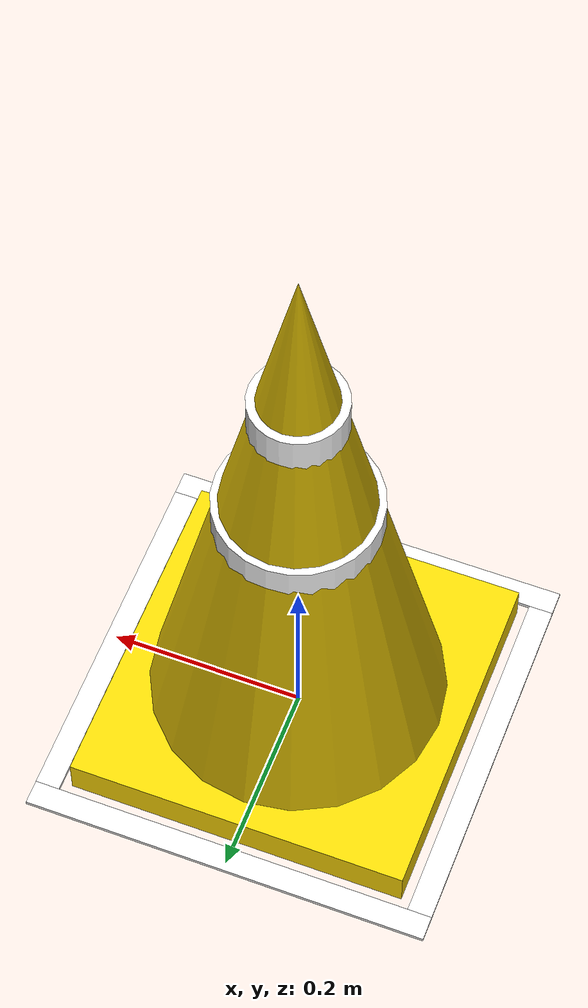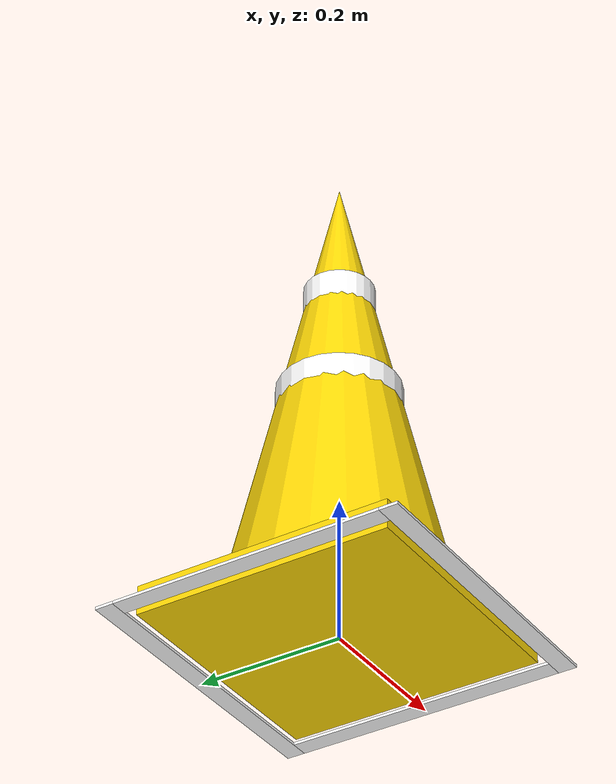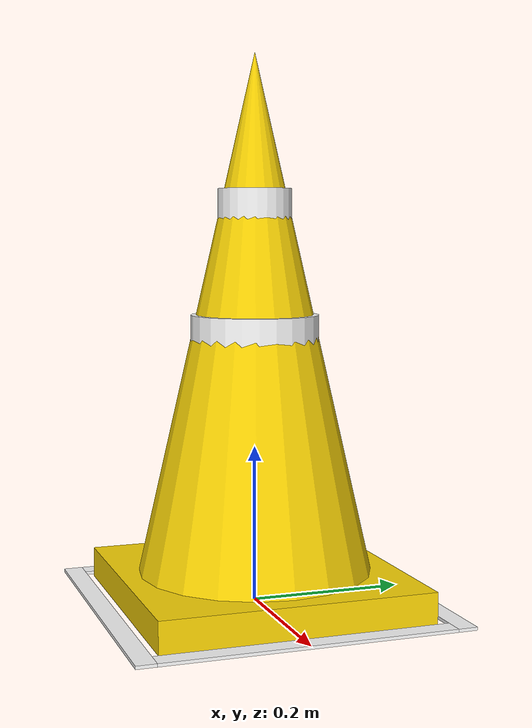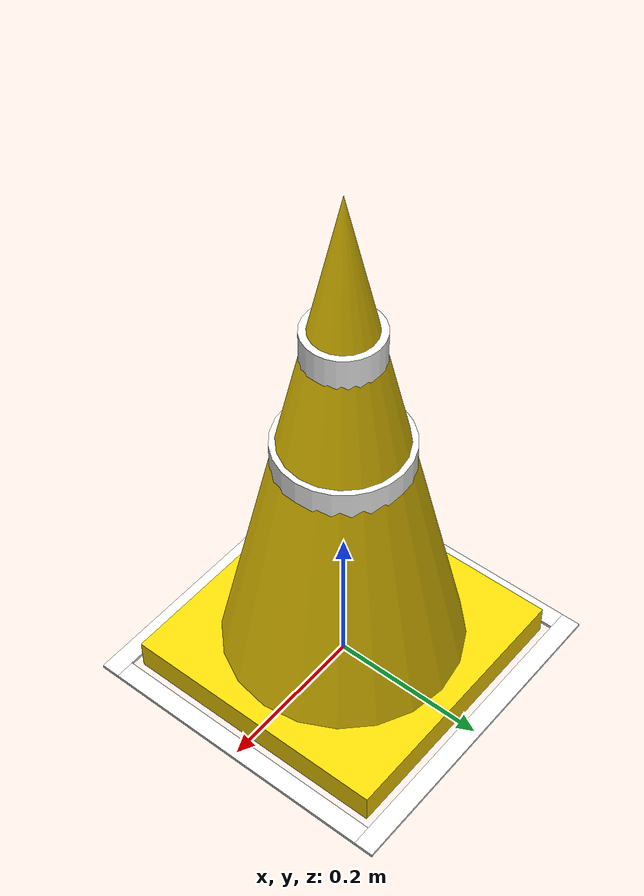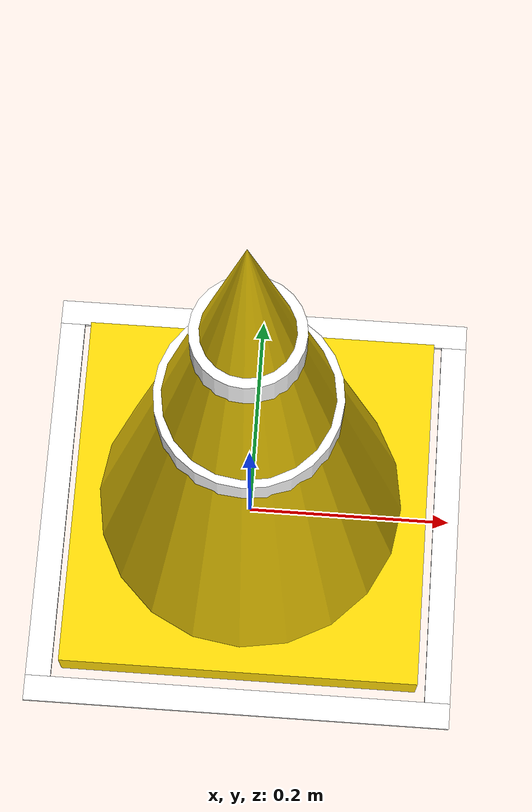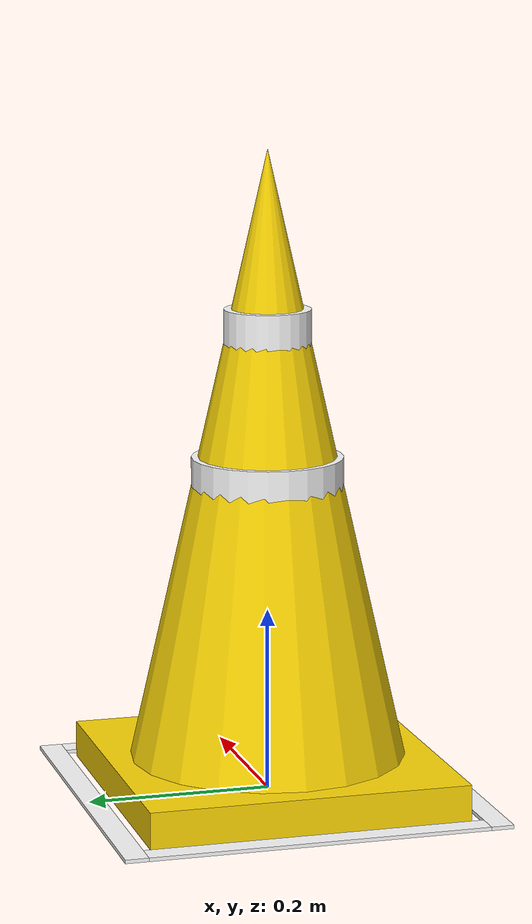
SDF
<?xml version="1.0"?>
<sdf version="1.9">
  <model name="track_cone_yellow_big">
    <static>true</static>

    <link name="cone_link">
      <!-- White placement box required around every cone position. -->
      <visual name="position_box_front">
        <pose>0.0 0.1975 0.002 0 0 0</pose>
        <geometry><box><size>0.42 0.025 0.004</size></box></geometry>
        <material><ambient>1 1 1 1</ambient><diffuse>1 1 1 1</diffuse></material>
      </visual>
      <visual name="position_box_rear">
        <pose>0.0 -0.1975 0.002 0 0 0</pose>
        <geometry><box><size>0.42 0.025 0.004</size></box></geometry>
        <material><ambient>1 1 1 1</ambient><diffuse>1 1 1 1</diffuse></material>
      </visual>
      <visual name="position_box_left">
        <pose>0.1975 0.0 0.002 0 0 0</pose>
        <geometry><box><size>0.025 0.37 0.004</size></box></geometry>
        <material><ambient>1 1 1 1</ambient><diffuse>1 1 1 1</diffuse></material>
      </visual>
      <visual name="position_box_right">
        <pose>-0.1975 0.0 0.002 0 0 0</pose>
        <geometry><box><size>0.025 0.37 0.004</size></box></geometry>
        <material><ambient>1 1 1 1</ambient><diffuse>1 1 1 1</diffuse></material>
      </visual>

      <collision name="base_collision">
        <pose>0 0 0.02 0 0 0</pose>
        <geometry><box><size>0.35 0.35 0.04</size></box></geometry>
      </collision>
      <collision name="body_collision">
        <pose>0 0 0.37 0 0 0</pose>
        <geometry><cylinder><radius>0.08</radius><length>0.66</length></cylinder></geometry>
      </collision>

      <visual name="base_visual">
        <pose>0 0 0.02 0 0 0</pose>
        <geometry><box><size>0.35 0.35 0.04</size></box></geometry>
        <material><ambient>0.75 0.55 0.01 1</ambient><diffuse>1.00 0.85 0.02 1</diffuse></material>
      </visual>
      <visual name="body_visual">
        <pose>0 0 0.37 0 0 0</pose>
        <geometry><cone><radius>0.15</radius><length>0.66</length></cone></geometry>
        <material><ambient>0.75 0.55 0.01 1</ambient><diffuse>1.00 0.85 0.02 1</diffuse></material>
      </visual>
      <visual name="lower_white_band_visual">
        <pose>0 0 0.34 0 0 0</pose>
        <geometry><cylinder><radius>0.082</radius><length>0.06</length></cylinder></geometry>
        <material><ambient>0.95 0.95 0.95 1</ambient><diffuse>1 1 1 1</diffuse></material>
      </visual>
      <visual name="upper_white_band_visual">
        <pose>0 0 0.50 0 0 0</pose>
        <geometry><cylinder><radius>0.047</radius><length>0.06</length></cylinder></geometry>
        <material><ambient>0.95 0.95 0.95 1</ambient><diffuse>1 1 1 1</diffuse></material>
      </visual>
    </link>
  </model>
</sdf>
